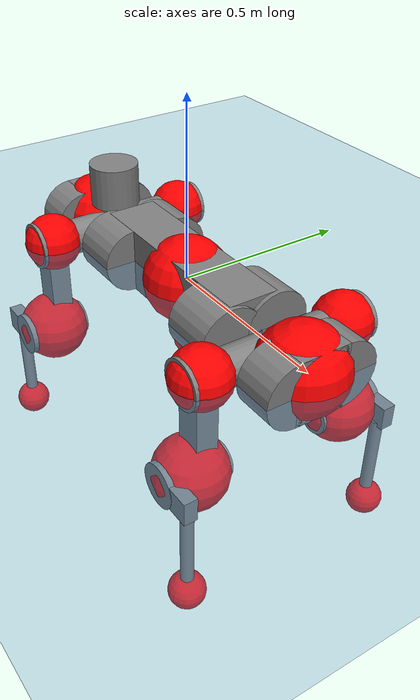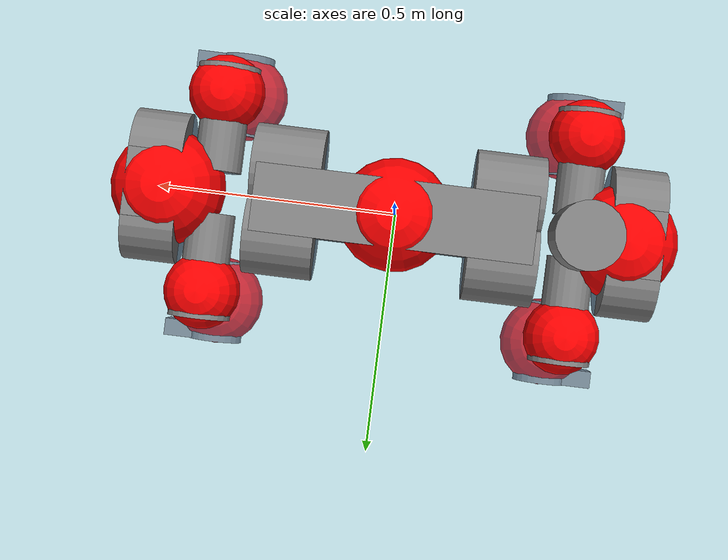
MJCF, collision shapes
<mujoco model="anymal_c">
  <compiler angle="radian" assetdir="assets" balanceinertia="true" inertiafromgeom="false"/>

  <option timestep="0.005" density="1.2" viscosity="2e-05"/>

  <size nkey="1"/>

  <visual>
    <quality shadowsize="8192"/>
    <map shadowclip="0.5"/>
  </visual>

  <default>
    <default class="/">
      <material specular="0" shininess="0.25"/>
      <geom contype="0" conaffinity="0" group="1" solref="-1000 -80"/>
      <site size="0.01 0.005 0.005" group="5"/>
      <general forcelimited="true" forcerange="-80 80" biastype="affine" gainprm="80" biasprm="0 -80 -2"/>
      <default class="anymal_c">
        <joint armature="0.01" damping="0.01" frictionloss="0.1"/>
        <default class="visual">
          <geom type="mesh" group="2"/>
          <default class="visual_zflip"/>
        </default>
        <default class="collision">
          <geom type="cylinder" group="3"/>
          <default class="foot">
            <geom size="0.03 0 0" type="sphere" condim="6" priority="1" friction="0.8 0.02 0.01" solimp="0.015 1 0.03"/>
          </default>
        </default>
      </default>
      <default class="reward_collision_sphere">
        <geom group="5" rgba="1 0 0 1"/>
      </default>
    </default>
  </default>

  <asset>
    <texture type="skybox" colorspace="auto" name="//unnamed_texture_0" builtin="gradient" rgb1="0.95 0.95 0.95" rgb2="0.95 0.95 0.95" width="100" height="600"/>
    <texture type="2d" colorspace="auto" name="texplane" builtin="checker" rgb1="0.345 0.575 0.748" rgb2="0.345 0.575 0.748" markrgb="1 1 1" width="512" height="512"/>
    <texture type="2d" colorspace="linear" name="base" file="base.png"/>
    <texture type="2d" colorspace="linear" name="top_shell" file="top_shell.png"/>
    <texture type="2d" colorspace="linear" name="bottom_shell" file="bottom_shell.png"/>
    <texture type="2d" colorspace="linear" name="remote" file="remote.png"/>
    <texture type="2d" colorspace="linear" name="hatch" file="hatch.png"/>
    <texture type="2d" colorspace="linear" name="handle" file="handle.png"/>
    <texture type="2d" colorspace="linear" name="face" file="face.png"/>
    <texture type="2d" colorspace="linear" name="battery" file="battery.png"/>
    <texture type="2d" colorspace="linear" name="lidar_cage" file="lidar_cage.png"/>
    <texture type="2d" colorspace="linear" name="depth_camera" file="depth_camera.png"/>
    <texture type="2d" colorspace="linear" name="wide_angle_camera" file="wide_angle_camera.png"/>
    <texture type="2d" colorspace="linear" name="lidar" file="lidar.png"/>
    <texture type="2d" colorspace="linear" name="drive" file="drive.png"/>
    <texture type="2d" colorspace="linear" name="hip_l" file="hip_l.png"/>
    <texture type="2d" colorspace="linear" name="shank_l" file="shank_l.png"/>
    <texture type="2d" colorspace="linear" name="foot" file="foot.png"/>
    <texture type="2d" colorspace="linear" name="thigh" file="thigh.png"/>
    <texture type="2d" colorspace="linear" name="shank_r" file="shank_r.png"/>
    <texture type="2d" colorspace="linear" name="hip_r" file="hip_r.png"/>
    <material name="MatPlane" class="/" texture="texplane" texuniform="true" texrepeat="2 2" specular="0.9" shininess="0.5"/>
    <material name="black_plastic" class="/" rgba="0.007 0.007 0.007 1"/>
    <material name="green" class="/" rgba="0.052 0.178 0.033 1"/>
    <material name="red" class="/" rgba="0.178 0.006 0.005 1"/>
    <material name="yellow" class="/" rgba="0.178 0.119 0.006 1"/>
    <material name="lwl" class="/" rgba="0.8 0.8 0.8 1"/>
    <material name="base" class="/" texture="base"/>
    <material name="top_shell" class="/" texture="top_shell"/>
    <material name="bottom_shell" class="/" texture="bottom_shell"/>
    <material name="hip_l" class="/" texture="hip_l"/>
    <material name="thigh" class="/" texture="thigh"/>
    <material name="shank_l" class="/" texture="shank_l"/>
    <material name="foot" class="/" texture="foot"/>
    <material name="hip_r" class="/" texture="hip_r"/>
    <material name="shank" class="/" texture="shank_r"/>
    <material name="hatch" class="/" texture="hatch"/>
    <material name="remote" class="/" texture="remote"/>
    <material name="handle" class="/" texture="handle"/>
    <material name="face" class="/" texture="face"/>
    <material name="depth_camera" class="/" texture="depth_camera"/>
    <material name="wide_angle_camera" class="/" texture="wide_angle_camera"/>
    <material name="battery" class="/" texture="battery"/>
    <material name="lidar_cage" class="/" texture="lidar_cage"/>
    <material name="lidar" class="/" texture="lidar"/>
    <material name="drive" class="/" texture="drive"/>
    <mesh name="base_0" class="/" file="base_0.obj"/>
    <mesh name="base_1" class="/" file="base_1.obj"/>
    <mesh name="base_2" class="/" file="base_2.obj"/>
    <mesh name="base_3" class="/" file="base_3.obj"/>
    <mesh name="base_4" class="/" file="base_4.obj"/>
    <mesh name="base_5" class="/" file="base_5.obj"/>
    <mesh name="top_shell" class="/" file="top_shell.obj"/>
    <mesh name="bottom_shell" class="/" file="bottom_shell.obj"/>
    <mesh name="remote" class="/" file="remote.obj"/>
    <mesh name="handle" class="/" file="handle.obj"/>
    <mesh name="face" class="/" file="face.obj"/>
    <mesh name="wide_angle_camera" class="/" file="wide_angle_camera.obj"/>
    <mesh name="depth_camera" class="/" file="depth_camera.obj"/>
    <mesh name="battery" class="/" file="battery.obj"/>
    <mesh name="lidar_cage" class="/" file="lidar_cage.obj"/>
    <mesh name="lidar" class="/" file="lidar.obj"/>
    <mesh name="drive" class="/" file="drive.obj"/>
    <mesh name="hip_l" class="/" file="hip_l.obj"/>
    <mesh name="thigh" class="/" file="thigh.obj"/>
    <mesh name="shank_l" class="/" file="shank_l.obj"/>
    <mesh name="foot" class="/" file="foot.obj"/>
    <mesh name="hip_r" class="/" file="hip_r.obj"/>
    <mesh name="hatch" class="/" file="hatch.obj"/>
    <mesh name="shank_r" class="/" file="shank_r.obj"/>
  </asset>

  <worldbody>
    <geom name="floor" class="/" size="100 100 0.125" type="plane" group="0" material="MatPlane"/>
    <light name="toplight_shadow" class="/" pos="0 0 5" dir="0.0990148 0.0990148 -0.990148" type="directional" ambient="0.04 0.04 0.04" diffuse="0.55 0.55 0.55" specular="0.12 0.12 0.12"/>
    <light name="toplight_fill" class="/" pos="0 0 5" dir="0.0990148 0.0990148 -0.990148" type="directional" castshadow="false" ambient="0.04 0.04 0.04" diffuse="0.3 0.3 0.3" specular="0.08 0.08 0.08"/>
    <body name="trunk" childclass="anymal_c" pos="0.000808826 0.000190771 -0.00103562" quat="1 0.000309462 0.000221621 -0.000142939">
      <inertial pos="6.35223e-06 -0.0018764 0.0485251" quat="0.498684 0.500149 0.502016 0.499144" mass="20.0609" diaginertia="0.87143 0.557637 0.19581"/>
      <joint name="//unnamed_joint_0" type="free" armature="0" damping="0" frictionloss="0"/>
      <geom name="//unnamed_geom_1" class="visual" material="green" mesh="base_0"/>
      <geom name="//unnamed_geom_2" class="visual" material="yellow" mesh="base_1"/>
      <geom name="//unnamed_geom_3" class="visual" material="red" mesh="base_2"/>
      <geom name="//unnamed_geom_4" class="visual" material="black_plastic" mesh="base_3"/>
      <geom name="//unnamed_geom_5" class="visual" material="lwl" mesh="base_4"/>
      <geom name="//unnamed_geom_6" class="visual" material="base" mesh="base_5"/>
      <geom name="trunk_1" class="collision" size="0.29205 0.0704948 0.0906361" type="box"/>
      <geom name="trunk_2" class="collision" size="0.0906361 0.0730124" pos="0.231306 0.0684205 0" quat="0.707107 0 0.707107 0"/>
      <geom name="trunk_3" class="collision" size="0.0906361 0.0730124" pos="-0.231306 0.0684205 0" quat="0.707107 0 0.707107 0"/>
      <geom name="trunk_4" class="collision" size="0.0906361 0.0730124" pos="0.231306 -0.0684205 0" quat="0.707107 0 0.707107 0"/>
      <geom name="trunk_5" class="collision" size="0.0906361 0.0730124" pos="-0.231306 -0.0684205 0" quat="0.707107 0 0.707107 0"/>
      <geom name="//unnamed_geom_12" class="visual" material="top_shell" mesh="top_shell"/>
      <geom name="//unnamed_geom_13" class="visual" material="bottom_shell" mesh="bottom_shell"/>
      <geom name="//unnamed_geom_14" class="visual" material="remote" mesh="remote"/>
      <geom name="//unnamed_geom_15" class="visual" material="handle" mesh="handle"/>
      <geom name="//unnamed_geom_16" class="visual" pos="0.440811 0 0" quat="1 0 0 0" material="face" mesh="face"/>
      <geom name="trunk_6" class="collision" size="0.0553887 0.0704948 0.0906361" pos="0.499302 0 0" type="box"/>
      <geom name="//unnamed_geom_18" class="collision" size="0.0906361 0.0553887" pos="0.499302 0.0684205 0" quat="0.707107 0 0.707107 0"/>
      <geom name="//unnamed_geom_19" class="collision" size="0.0906361 0.0553887" pos="0.499302 -0.0684205 0" quat="0.707107 0 0.707107 0"/>
      <geom name="//unnamed_geom_20" class="visual" pos="0.490951 0 -0.0279923" quat="0.965926 0 0.258819 0" material="depth_camera" mesh="depth_camera"/>
      <geom name="//unnamed_geom_21" class="visual" pos="0.545564 0 0.014675" material="wide_angle_camera" mesh="wide_angle_camera"/>
      <geom name="//unnamed_geom_22" class="visual_zflip" pos="-0.440811 0 0" quat="0 0 0 1" material="face" mesh="face"/>
      <geom name="trunk_7" class="collision" size="0.0553887 0.0704948 0.0906361" pos="-0.499302 0 0" quat="0 0 0 1" type="box"/>
      <geom name="//unnamed_geom_24" class="collision" size="0.0906361 0.0553887" pos="-0.499302 -0.0684205 0" quat="0 -0.707107 0 0.707107"/>
      <geom name="//unnamed_geom_25" class="collision" size="0.0906361 0.0553887" pos="-0.499302 0.0684205 0" quat="0 -0.707107 0 0.707107"/>
      <geom name="//unnamed_geom_26" class="visual" pos="-0.490951 0 -0.0279923" quat="0 -0.258819 0 0.965926" material="depth_camera" mesh="depth_camera"/>
      <geom name="//unnamed_geom_27" class="visual_zflip" pos="-0.545564 0 0.014675" quat="0 0 0 1" material="wide_angle_camera" mesh="wide_angle_camera"/>
      <geom name="//unnamed_geom_28" class="visual" material="battery" mesh="battery"/>
      <geom name="//unnamed_geom_29" class="visual" pos="0 0.0736022 0.0291097" quat="0.683013 -0.183013 0.183013 0.683013" material="depth_camera" mesh="depth_camera"/>
      <geom name="//unnamed_geom_30" class="visual" pos="0 -0.0736022 0.0291097" quat="0.683013 0.183013 0.183013 -0.683013" material="depth_camera" mesh="depth_camera"/>
      <geom name="//unnamed_geom_31" class="visual" pos="-0.387106 0 0.0720515" quat="1 0 0 0" material="lidar_cage" mesh="lidar_cage"/>
      <geom name="trunk_8" class="collision" size="0.0704948 0.0604241" pos="-0.387106 0 0.130869"/>
      <geom name="//unnamed_geom_33" class="visual" pos="-0.387106 -3.38035e-05 0.139398" quat="0.707107 0 0 -0.707107" material="lidar" mesh="lidar"/>
      <geom name="//unnamed_geom_34" class="visual" pos="0.318937 0.101654 -4.92823e-11" quat="0.258819 0.965926 0 0" material="drive" mesh="drive"/>
      <geom name="//unnamed_geom_35" class="visual" pos="0.318937 -0.101654 4.92823e-11" quat="0.258819 -0.965926 0 0" material="drive" mesh="drive"/>
      <geom name="//unnamed_geom_36" class="visual" pos="-0.318937 0.101654 4.92823e-11" quat="0 0 0.965926 -0.258819" material="drive" mesh="drive"/>
      <geom name="//unnamed_geom_37" class="visual" pos="-0.318937 -0.101654 -4.92823e-11" quat="0 0 -0.965926 -0.258819" material="drive" mesh="drive"/>
      <geom name="//unnamed_geom_38" class="visual" pos="0.123363 0 0.0715613" quat="1 0 0 0" material="hatch" mesh="hatch"/>
      <geom name="//unnamed_geom_39" class="reward_collision_sphere" size="0.120848"/>
      <geom name="//unnamed_geom_40" class="reward_collision_sphere" size="0.120848" pos="0.478565 0 0"/>
      <geom name="//unnamed_geom_41" class="reward_collision_sphere" size="0.120848" pos="-0.478565 0 0"/>
      <site name="imu" pos="0.275133 0.00757874 0.0349073" size="0.0100707"/>
      <camera name="track" pos="0 -1.95487 0" quat="0.707107 0.707107 0 0" mode="trackcom"/>
      <camera name="ego_camera" pos="0.478565 0 -0.0392117" quat="-0.5 -0.5 0.5 0.5"/>
      <body name="LF_HIP" pos="0.318479 0.101103 -0.000248156" quat="0.258744 0.965946 -5.95515e-05 3.19553e-05">
        <inertial pos="0.0603015 -0.0155561 -0.00858686" quat="-0.128315 0.71018 -0.135571 0.678823" mass="2.73418" diaginertia="0.00768785 0.00418015 0.00288732"/>
        <joint name="LF_HAA" pos="0 0 0" axis="0.999988 0.00220109 0.00433159" range="-0.720791 0.470862" armature="0.0101678" damping="0.0099767" frictionloss="0.0986293"/>
        <geom name="//unnamed_geom_42" class="visual" pos="0 -2.89905e-06 4.76167e-07" quat="0.258819 -0.965926 0 0" material="hip_l" mesh="hip_l"/>
        <geom name="//unnamed_geom_43" class="visual" pos="0.0637023 -0.076057 -0.0439327" quat="0.183013 -0.683013 0.683013 0.183013" material="drive" mesh="drive"/>
        <geom name="//unnamed_geom_44" class="collision" size="0.0503534 0.0704948" pos="0.0637023 -0.0116899 -0.00676892" quat="-0.353553 -0.612372 0.612372 -0.353553"/>
        <body name="LF_THIGH" pos="0.0643807 -0.069245 -0.041207" quat="0.182794 -0.682393 0.683709 0.182945">
          <inertial pos="0.0332835 0.00013952 -0.241148" quat="0.993235 -0.00696411 -0.0839219 0.0799553" mass="3.08915" diaginertia="0.0409389 0.0256901 0.00371503"/>
          <joint name="LF_HFE" pos="0 0 0" axis="1 0.00031722 -0.00067855" stiffness="0.00462771" range="-3.11025 3.14446" armature="0.0104762" damping="0.0139162" frictionloss="0.101913"/>
          <geom name="//unnamed_geom_45" class="visual" pos="0.00171189 2.69754e-06 0" quat="0.707107 0 0 -0.707107" material="thigh" mesh="thigh"/>
          <geom name="//unnamed_geom_46" class="collision" size="0.0654594 0.0402827" pos="0.0425391 0 0" quat="0.5 0.5 -0.5 -0.5"/>
          <geom name="//unnamed_geom_47" class="collision" size="0.037765 0.030212 0.142313" pos="0.0319043 0 -0.138529" quat="0.707107 0 0 -0.707107" type="box"/>
          <geom name="//unnamed_geom_48" class="visual" pos="0.106667 0 -0.279383" quat="1 0 0 0" material="drive" mesh="drive"/>
          <geom name="//unnamed_geom_49" class="collision" size="0.0503534 0.0704948" pos="0.0322233 0 -0.279383" quat="0.707107 0 0.707107 0"/>
          <geom name="//unnamed_geom_50" class="reward_collision_sphere" size="0.0805654" pos="0.0265869 0 0"/>
          <body name="LF_SHANK" pos="0.106251 0.0013982 -0.280598" quat="1 0.000128074 0.000127683 -0.000254602">
            <inertial pos="0.00587227 -0.0603749 -0.0784034" quat="0.993051 -0.114707 -0.000637503 -0.0263168" mass="0.601597" diaginertia="0.013591 0.00831062 0.00100923"/>
            <joint name="LF_KFE" pos="0 0 0" axis="0.999999 -0.00118187 0.00040528" range="-3.13471 3.13406" armature="0.00957896" damping="0.0126828" frictionloss="0.0989884"/>
            <geom name="//unnamed_geom_51" class="visual" pos="0.000558211 0.00297641 0" quat="0.707107 0 0 -0.707107" material="shank_l" mesh="shank_l"/>
            <geom name="LF_kfe_act" class="collision" size="0.0604241 0.0201414" pos="0.0212695 0 0" quat="0.5 0.5 -0.5 -0.5"/>
            <geom name="//unnamed_geom_53" class="collision" size="0.0579054 0.0339885 0.0191343" pos="0.0212695 -0.0562015 0" quat="0.5 0.5 -0.5 -0.5" type="box"/>
            <geom name="//unnamed_geom_54" class="visual" pos="0.0138782 -0.0850062 -0.331309" quat="0.382683 0 0 -0.92388" material="foot" mesh="foot"/>
            <geom name="LF_calf" class="collision" size="0.0176237 0.14225" pos="0.0138784 -0.0859654 -0.165655" quat="0.707107 0 0 -0.707107"/>
            <geom name="LF_foot" class="foot" size="0.0298656" pos="0.0138784 -0.0859654 -0.309253" quat="0.707107 0 0 -0.707107"/>
            <geom name="//unnamed_geom_57" class="reward_collision_sphere" size="0.100707" pos="-0.0531738 0 0"/>
            <geom name="//unnamed_geom_58" class="reward_collision_sphere" size="0.0503534" pos="0.0138784 -0.0859654 -0.309253"/>
            <site name="LF_foot" class="foot" pos="0.0138784 -0.0859654 -0.309253" quat="0.707107 0 0 -0.707107" size="0.0100707"/>
          </body>
        </body>
      </body>
      <body name="RF_HIP" pos="0.317356 -0.101845 0.00132583" quat="0.25879 -0.965934 8.11809e-05 7.78588e-05">
        <inertial pos="0.0602731 0.0128536 -0.00859341" quat="0.144946 0.682749 0.12518 0.705106" mass="2.82003" diaginertia="0.0078436 0.00450138 0.00294189"/>
        <joint name="RF_HAA" pos="0 0 0" axis="0.999991 -0.00316596 -0.00273241" stiffness="0.000275703" range="-0.490751 0.718024" armature="0.010169" damping="0.00440276" frictionloss="0.095579"/>
        <geom name="//unnamed_geom_59" class="visual" pos="0 2.89903e-06 4.76166e-07" quat="0.258819 0.965926 0 0" material="hip_r" mesh="hip_r"/>
        <geom name="//unnamed_geom_60" class="visual" pos="0.0637023 0.076057 -0.0439327" quat="0.183013 0.683013 0.683013 -0.183013" material="drive" mesh="drive"/>
        <geom name="//unnamed_geom_61" class="collision" size="0.0503534 0.0704948" pos="0.0637023 0.0116899 -0.00676892" quat="-0.353553 0.612372 0.612372 0.353553"/>
        <body name="RF_THIGH" pos="0.0636507 0.0715924 -0.0429452" quat="0.1826 0.683378 0.682759 -0.183007">
          <inertial pos="0.0350072 0.000977073 -0.240223" quat="0.992786 -0.00506375 -0.0802963 0.0889029" mass="3.19289" diaginertia="0.0411985 0.0262595 0.00390142"/>
          <joint name="RF_HFE" pos="0 0 0" axis="1 -0.000318975 -0.000166948" stiffness="0.00149507" range="-3.16243 3.14267" armature="0.00994365" damping="0.0110705" frictionloss="0.0961272"/>
          <geom name="//unnamed_geom_62" class="visual" pos="0.00171189 2.69754e-06 0" quat="0.707107 0 0 -0.707107" material="thigh" mesh="thigh"/>
          <geom name="//unnamed_geom_63" class="collision" size="0.0654594 0.0402827" pos="0.0425391 0 0" quat="0.5 0.5 0.5 0.5"/>
          <geom name="//unnamed_geom_64" class="collision" size="0.037765 0.030212 0.142313" pos="0.0319043 0 -0.138529" quat="0.707107 0 0 0.707107" type="box"/>
          <geom name="//unnamed_geom_65" class="visual" pos="0.106667 0 -0.279383" quat="1 0 0 0" material="drive" mesh="drive"/>
          <geom name="//unnamed_geom_66" class="collision" size="0.0503534 0.0704948" pos="0.0322233 0 -0.279383" quat="0.707107 0 0.707107 0"/>
          <geom name="//unnamed_geom_67" class="reward_collision_sphere" size="0.0805654" pos="0.0265869 0 0"/>
          <body name="RF_SHANK" pos="0.106543 -4.33362e-05 -0.278333" quat="1 2.83184e-05 6.64414e-05 -6.55817e-05">
            <inertial pos="0.00504821 0.0598942 -0.0788943" quat="0.992962 0.113261 -0.00920314 0.0333702" mass="0.608851" diaginertia="0.0138642 0.00844342 0.00102913"/>
            <joint name="RF_KFE" pos="0 0 0" axis="1 0.000575544 0.000658712" range="-3.17697 3.13649" armature="0.010781" damping="0.0193517" frictionloss="0.0966832"/>
            <geom name="//unnamed_geom_68" class="visual" pos="0.000558208 -0.0029764 0" quat="0.707107 0 0 0.707107" material="shank" mesh="shank_r"/>
            <geom name="RF_kfe_act" class="collision" size="0.0604241 0.0201414" pos="0.0212695 0 0" quat="0.5 0.5 0.5 0.5"/>
            <geom name="//unnamed_geom_70" class="collision" size="0.0579054 0.0339885 0.0191343" pos="0.0212695 0.0562015 0" quat="0.5 0.5 0.5 0.5" type="box"/>
            <geom name="//unnamed_geom_71" class="visual" pos="0.0138785 0.0850062 -0.331309" quat="0.382683 0 0 0.92388" material="foot" mesh="foot"/>
            <geom name="RF_calf" class="collision" size="0.0176237 0.14225" pos="0.0138784 0.0859654 -0.165655" quat="0.707107 0 0 0.707107"/>
            <geom name="RF_foot" class="foot" size="0.0279192" pos="0.0138784 0.0859654 -0.309253" quat="0.707107 0 0 0.707107"/>
            <geom name="//unnamed_geom_74" class="reward_collision_sphere" size="0.100707" pos="-0.0531738 0 0"/>
            <geom name="//unnamed_geom_75" class="reward_collision_sphere" size="0.0503534" pos="0.0138784 0.0859654 -0.309253"/>
            <site name="RF_foot" class="foot" pos="0.0138784 0.0859654 -0.309253" quat="0.707107 0 0 0.707107" size="0.0100707"/>
          </body>
        </body>
      </body>
      <body name="LH_HIP" pos="-0.316377 0.101281 -0.000634496" quat="-8.68249e-05 5.28091e-05 0.965888 -0.25896">
        <inertial pos="0.0603647 0.0151823 -0.0104772" quat="0.139035 0.678085 0.123181 0.711124" mass="2.91549" diaginertia="0.00844558 0.00454113 0.00307534"/>
        <joint name="LH_HAA" pos="0 0 0" axis="0.999964 0.00713723 0.00460575" range="-0.487164 0.701927" armature="0.00987878" damping="0" frictionloss="0.100431"/>
        <geom name="//unnamed_geom_76" class="visual" pos="0 2.89903e-06 4.76166e-07" quat="-0.258819 -0.965926 0 0" material="hip_r" mesh="hip_r"/>
        <geom name="//unnamed_geom_77" class="visual" pos="0.0637023 0.076057 -0.0439327" quat="0.183013 0.683013 0.683013 -0.183013" material="drive" mesh="drive"/>
        <geom name="//unnamed_geom_78" class="collision" size="0.0503534 0.0704948" pos="0.0637023 0.0116899 -0.00676892" quat="-0.353553 0.612372 0.612372 0.353553"/>
        <body name="LH_THIGH" pos="0.063456 0.0714227 -0.0425643" quat="0.182432 0.683101 0.683009 -0.183278">
          <inertial pos="0.0303665 -0.00110725 -0.242922" quat="0.992829 -0.00615274 -0.0796897 0.0888957" mass="3.14679" diaginertia="0.0395813 0.0266534 0.00370902"/>
          <joint name="LH_HFE" pos="0 0 0" axis="0.999999 -0.000529161 0.00148717" stiffness="0.0044161" range="-3.13231 3.13234" armature="0.00987704" damping="0.00352288" frictionloss="0.100998"/>
          <geom name="//unnamed_geom_79" class="visual" pos="0.00171189 2.69754e-06 0" quat="0.707107 0 0 -0.707107" material="thigh" mesh="thigh"/>
          <geom name="//unnamed_geom_80" class="collision" size="0.0654594 0.0402827" pos="0.0425391 0 0" quat="0.5 0.5 -0.5 -0.5"/>
          <geom name="//unnamed_geom_81" class="collision" size="0.037765 0.030212 0.142313" pos="0.0319043 0 -0.138529" quat="0.707107 0 0 -0.707107" type="box"/>
          <geom name="//unnamed_geom_82" class="visual" pos="0.106667 0 -0.279383" quat="1 0 0 0" material="drive" mesh="drive"/>
          <geom name="//unnamed_geom_83" class="collision" size="0.0503534 0.0704948" pos="0.0322233 0 -0.279383" quat="0.707107 0 0.707107 0"/>
          <geom name="//unnamed_geom_84" class="reward_collision_sphere" size="0.0805654" pos="0.0265869 0 0"/>
          <body name="LH_SHANK" pos="0.107229 -0.001792 -0.278007" quat="1 1.4104e-05 3.39321e-05 9.46076e-05">
            <inertial pos="0.00529397 0.0615573 -0.078028" quat="0.992966 0.115586 -0.00167194 0.0255945" mass="0.620832" diaginertia="0.0141748 0.00867918 0.00103172"/>
            <joint name="LH_KFE" pos="0 0 0" axis="0.999983 -0.00522989 -0.00241536" range="-3.11302 3.12919" armature="0.0111223" damping="0.0187302" frictionloss="0.0934105"/>
            <geom name="//unnamed_geom_85" class="visual" pos="0.000558208 -0.0029764 0" quat="-0.707107 0 0 -0.707107" material="shank" mesh="shank_r"/>
            <geom name="LH_kfe_act" class="collision" size="0.0604241 0.0201414" pos="0.0212695 0 0" quat="0.5 0.5 -0.5 -0.5"/>
            <geom name="//unnamed_geom_87" class="collision" size="0.0579054 0.0339885 0.0191343" pos="0.0212695 0.0562015 0" quat="0.5 0.5 -0.5 -0.5" type="box"/>
            <geom name="//unnamed_geom_88" class="visual" pos="0.0138785 0.0850062 -0.331309" quat="-0.382683 0 0 -0.92388" material="foot" mesh="foot"/>
            <geom name="LH_calf" class="collision" size="0.0176237 0.14225" pos="0.0138784 0.0859654 -0.165655" quat="0.707107 0 0 -0.707107"/>
            <geom name="LH_foot" class="foot" size="0.0302794" pos="0.0138784 0.0859654 -0.309253" quat="0.707107 0 0 -0.707107"/>
            <geom name="//unnamed_geom_91" class="reward_collision_sphere" size="0.100707" pos="-0.0531738 0 0"/>
            <geom name="//unnamed_geom_92" class="reward_collision_sphere" size="0.0503534" pos="0.0138784 0.0859654 -0.309253"/>
            <site name="LH_foot" class="foot" pos="0.0138784 0.0859654 -0.309253" quat="0.707107 0 0 -0.707107" size="0.0100707"/>
          </body>
        </body>
      </body>
      <body name="RH_HIP" pos="-0.316392 -0.101767 -7.12978e-05" quat="-0.000147055 -0.000104339 -0.965918 -0.25885">
        <inertial pos="0.0603139 -0.0154632 -0.010623" quat="-0.139345 0.707904 -0.140055 0.678114" mass="2.80338" diaginertia="0.00773441 0.00423624 0.00289116"/>
        <joint name="RH_HAA" pos="0 0 0" axis="0.999934 0.00356731 -0.0109599" range="-0.762146 0.485109" armature="0.0105019" damping="0.0110995" frictionloss="0.100247"/>
        <geom name="//unnamed_geom_93" class="visual" pos="0 -2.89905e-06 4.76167e-07" quat="-0.258819 0.965926 0 0" material="hip_l" mesh="hip_l"/>
        <geom name="//unnamed_geom_94" class="visual" pos="0.0637023 -0.076057 -0.0439327" quat="-0.183013 0.683013 -0.683013 -0.183013" material="drive" mesh="drive"/>
        <geom name="//unnamed_geom_95" class="collision" size="0.0503534 0.0704948" pos="0.0637023 -0.0116899 -0.00676892" quat="0.353553 0.612372 -0.612372 0.353553"/>
        <body name="RH_THIGH" pos="0.0658803 -0.0715551 -0.0430219" quat="-0.183308 0.682537 -0.68338 -0.183121">
          <inertial pos="0.0331949 -0.000204641 -0.241382" quat="0.993204 -0.00521929 -0.080911 0.0834941" mass="3.0921" diaginertia="0.0405504 0.0264337 0.003765"/>
          <joint name="RH_HFE" pos="0 0 0" axis="0.999997 0.00180269 -0.00152872" stiffness="0.00104437" range="-3.14121 3.16037" armature="0.0101386" damping="0.00612433" frictionloss="0.100247"/>
          <geom name="//unnamed_geom_96" class="visual" pos="0.00171189 2.69754e-06 0" quat="0.707107 0 0 -0.707107" material="thigh" mesh="thigh"/>
          <geom name="//unnamed_geom_97" class="collision" size="0.0654594 0.0402827" pos="0.0425391 0 0" quat="0.5 0.5 0.5 0.5"/>
          <geom name="//unnamed_geom_98" class="collision" size="0.037765 0.030212 0.142313" pos="0.0319043 0 -0.138529" quat="0.707107 0 0 0.707107" type="box"/>
          <geom name="//unnamed_geom_99" class="visual" pos="0.106667 0 -0.279383" quat="1 0 0 0" material="drive" mesh="drive"/>
          <geom name="//unnamed_geom_100" class="collision" size="0.0503534 0.0704948" pos="0.0322233 0 -0.279383" quat="0.707107 0 0.707107 0"/>
          <geom name="//unnamed_geom_101" class="reward_collision_sphere" size="0.0805654" pos="0.0265869 0 0"/>
          <body name="RH_SHANK" pos="0.106382 0.00178235 -0.278737" quat="1 0.000572018 0.000675128 -0.000462261">
            <inertial pos="0.00730229 -0.0589022 -0.0799706" quat="0.993389 -0.112389 -0.00420459 -0.0230056" mass="0.612055" diaginertia="0.0139746 0.0082479 0.00102333"/>
            <joint name="RH_KFE" pos="0 0 0" axis="0.999997 -0.00198148 -0.00121375" range="-3.12565 3.17353" armature="0.010018" damping="0.0192508" frictionloss="0.0965498"/>
            <geom name="//unnamed_geom_102" class="visual" pos="0.000558211 0.00297641 0" quat="0.707107 0 0 -0.707107" material="shank_l" mesh="shank_l"/>
            <geom name="RH_kfe_act" class="collision" size="0.0604241 0.0201414" pos="0.0212695 0 0" quat="0.5 0.5 0.5 0.5"/>
            <geom name="//unnamed_geom_104" class="collision" size="0.0579054 0.0339885 0.0191343" pos="0.0212695 -0.0562015 0" quat="0.5 0.5 0.5 0.5" type="box"/>
            <geom name="//unnamed_geom_105" class="visual" pos="0.0138782 -0.0850062 -0.331309" quat="0.382683 0 0 -0.92388" material="foot" mesh="foot"/>
            <geom name="RH_calf" class="collision" size="0.0176237 0.14225" pos="0.0138784 -0.0859654 -0.165655" quat="0.707107 0 0 0.707107"/>
            <geom name="RH_foot" class="foot" size="0.0281883" pos="0.0138784 -0.0859654 -0.309253" quat="0.707107 0 0 0.707107"/>
            <geom name="//unnamed_geom_108" class="reward_collision_sphere" size="0.100707" pos="-0.0531738 0 0"/>
            <geom name="//unnamed_geom_109" class="reward_collision_sphere" size="0.0503534" pos="0.0138784 -0.0859654 -0.309253"/>
            <site name="RH_foot" class="foot" pos="0.0138784 -0.0859654 -0.309253" quat="0.707107 0 0 0.707107" size="0.0100707"/>
          </body>
        </body>
      </body>
    </body>
  </worldbody>

  <contact>
    <pair class="/" geom1="floor" geom2="LF_foot" name="//unnamed_contact_0"/>
    <pair class="/" geom1="floor" geom2="RF_foot" name="//unnamed_contact_1"/>
    <pair class="/" geom1="floor" geom2="LH_foot" name="//unnamed_contact_2"/>
    <pair class="/" geom1="floor" geom2="RH_foot" name="//unnamed_contact_3"/>
  </contact>

  <actuator>
    <general name="LF_HAA" class="/" joint="LF_HAA" forcerange="-78.439 78.439" gainprm="81.6302" biasprm="0 -81.6302 -1.96148"/>
    <general name="LF_HFE" class="/" joint="LF_HFE" forcerange="-73.9189 73.9189" gainprm="81.6302" biasprm="0 -81.6302 -1.96148"/>
    <general name="LF_KFE" class="/" joint="LF_KFE" forcerange="-83.8852 83.8852" gainprm="81.6302" biasprm="0 -81.6302 -1.96148"/>
    <general name="RF_HAA" class="/" joint="RF_HAA" forcerange="-82.2804 82.2804" gainprm="81.6302" biasprm="0 -81.6302 -1.96148"/>
    <general name="RF_HFE" class="/" joint="RF_HFE" forcerange="-84.9464 84.9464" gainprm="81.6302" biasprm="0 -81.6302 -1.96148"/>
    <general name="RF_KFE" class="/" joint="RF_KFE" forcerange="-81.6319 81.6319" gainprm="81.6302" biasprm="0 -81.6302 -1.96148"/>
    <general name="LH_HAA" class="/" joint="LH_HAA" forcerange="-80.4564 80.4564" gainprm="81.6302" biasprm="0 -81.6302 -1.96148"/>
    <general name="LH_HFE" class="/" joint="LH_HFE" forcerange="-78.9664 78.9664" gainprm="81.6302" biasprm="0 -81.6302 -1.96148"/>
    <general name="LH_KFE" class="/" joint="LH_KFE" forcerange="-78.4953 78.4953" gainprm="81.6302" biasprm="0 -81.6302 -1.96148"/>
    <general name="RH_HAA" class="/" joint="RH_HAA" forcerange="-79.5443 79.5443" gainprm="81.6302" biasprm="0 -81.6302 -1.96148"/>
    <general name="RH_HFE" class="/" joint="RH_HFE" forcerange="-86.3157 86.3157" gainprm="81.6302" biasprm="0 -81.6302 -1.96148"/>
    <general name="RH_KFE" class="/" joint="RH_KFE" forcerange="-78.9736 78.9736" gainprm="81.6302" biasprm="0 -81.6302 -1.96148"/>
  </actuator>

  <sensor>
    <gyro site="imu" name="imu_angular_velocity"/>
    <velocimeter site="imu" name="imu_linear_velocity"/>
    <framelinvel objtype="site" objname="LF_foot" name="LF_foot_global_linear_velocity"/>
    <framelinvel objtype="site" objname="RF_foot" name="RF_foot_global_linear_velocity"/>
    <framelinvel objtype="site" objname="LH_foot" name="LH_foot_global_linear_velocity"/>
    <framelinvel objtype="site" objname="RH_foot" name="RH_foot_global_linear_velocity"/>
  </sensor>

  <keyframe>
    <key name="home" qpos="0 0 0.55 1 0 0 0 0 0.4 -0.8 0 -0.4 0.8 0 -0.4 0.8 0 0.4 -0.8"/>
  </keyframe>
</mujoco>
